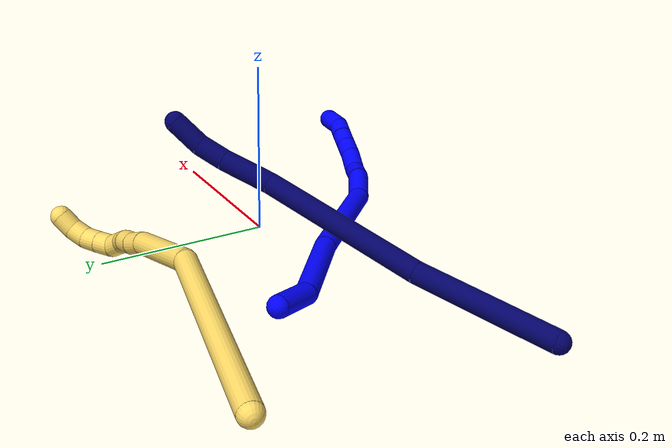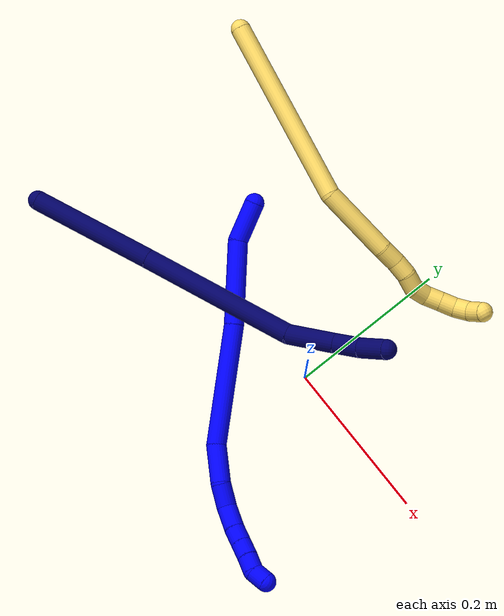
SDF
<sdf version="1.7">
 <world name="default">
  <model name="photoneo_s_sensor">
   <static>1</static>
   <pose>0 0 2 1.57079 1.57079 3.14159</pose>
   <link name="link">
    <inertial><mass>0.1</mass></inertial>
    <sensor name="sensor" type="depth">
     <update_rate>30</update_rate>
     <camera>
      <horizontal_fov>1.22</horizontal_fov>
      <image><width>1920</width><height>1200</height><format>B8G8R8</format></image>
      <clip><near>0.1</near><far>4</far></clip>
      <depth_camera><output>points</output></depth_camera>
     </camera>
     <plugin name="camera_plugin" filename="libgazebo_ros_depth_camera.so">
      <baseline>0.2</baseline>
      <alwaysOn>1</alwaysOn>
      <updateRate>0.0</updateRate>
      <cameraName>camera_ir</cameraName>
      <imageTopicName>/camera/color/image_raw</imageTopicName>
      <cameraInfoTopicName>/camera/color/camera_info</cameraInfoTopicName>
      <depthImageTopicName>/camera/depth/image_raw</depthImageTopicName>
      <depthImageCameraInfoTopicName>/camera/depth/camera_info</depthImageCameraInfoTopicName>
      <pointCloudTopicName>/camera/depth/points</pointCloudTopicName>
      <frameName>fr_optical</frameName>
      <pointCloudCutoff>0.1</pointCloudCutoff>
      <pointCloudCutoffMax>2.0</pointCloudCutoffMax>
      <distortionK1>0</distortionK1>
      <distortionK2>0</distortionK2>
      <distortionK3>0</distortionK3>
      <distortionT1>0</distortionT1>
      <distortionT2>0</distortionT2>
      <CxPrime>0</CxPrime>
      <Cx>0</Cx>
      <Cy>0</Cy>
      <focalLength>0</focalLength>
      <hackBaseline>0</hackBaseline>
     </plugin>
    </sensor>
   </link>
  </model>
  <model name="bin">
   <static>1</static>
   <link name="bottom">
    <collision name="collision-bottom">
     <pose>0 0 -0.01 0 -0 0</pose>
     <geometry><box><size>0.8 0.6 0.02</size></box></geometry>
     <surface>
      <friction><ode><mu>100</mu><mu2>100</mu2></ode></friction>
      <contact><collide_bitmask>65535</collide_bitmask></contact>
     </surface>
    </collision>
   </link>
   <link name="west_wall">
    <collision name="collision-west_wall">
     <pose>-0.41 0 0.1 0 -0 0</pose>
     <geometry><box><size>0.02 0.6 0.2</size></box></geometry>
     <surface>
      <friction><ode><mu>100</mu><mu2>100</mu2></ode></friction>
      <contact><collide_bitmask>65535</collide_bitmask></contact>
     </surface>
    </collision>
   </link>
   <link name="east_wall">
    <collision name="collision-east_wall">
     <pose>0.41 0 0.1 0 -0 0</pose>
     <geometry><box><size>0.02 0.6 0.2</size></box></geometry>
     <surface>
      <friction><ode><mu>100</mu><mu2>100</mu2></ode></friction>
      <contact><collide_bitmask>65535</collide_bitmask></contact>
     </surface>
    </collision>
   </link>
   <link name="south_wall">
    <collision name="collision-south_wall">
     <pose>0 -0.31 0.1 0 -0 0</pose>
     <geometry><box><size>0.8 0.02 0.2</size></box></geometry>
     <surface>
      <friction><ode><mu>100</mu><mu2>100</mu2></ode></friction>
      <contact><collide_bitmask>65535</collide_bitmask></contact>
     </surface>
    </collision>
   </link>
   <link name="north_wall">
    <collision name="collision-north_wall">
     <pose>0 0.31 0.1 0 -0 0</pose>
     <geometry><box><size>0.8 0.02 0.2</size></box></geometry>
     <surface>
      <friction><ode><mu>100</mu><mu2>100</mu2></ode></friction>
      <contact><collide_bitmask>65535</collide_bitmask></contact>
     </surface>
    </collision>
   </link>
  </model>
  <model name="1">
   <static>0</static>
   <link name="1">
    <collision name="collision-cylinder-e_1_1_4">
     <pose>0.01701 -0.019149 -0.003366 1.7448 0.718748 0.841528</pose>
     <geometry><cylinder><radius>0.0125</radius><length>0.051667</length></cylinder></geometry>
     <surface>
      <friction><ode><mu>1.16</mu><mu2>1.16</mu2><slip1>0</slip1><slip2>0</slip2></ode></friction>
      <contact><ode><kp>1e+06</kp><kd>1</kd><max_vel>0</max_vel><min_depth>0.001</min_depth></ode></contact>
     </surface>
    </collision>
    <visual name="visual-cylinder-e_1_1_4">
     <pose>0.01701 -0.019149 -0.003366 1.7448 0.718748 0.841528</pose>
     <geometry><cylinder><radius>0.0125</radius><length>0.051667</length></cylinder></geometry>
     <material><ambient>0 0 1 1</ambient></material>
    </visual>
    <collision name="collision-cylinder-e_2_4_5">
     <pose>0.081727 -0.059724 -0.01683 2.01121 1.10998 1.54813</pose>
     <geometry><cylinder><radius>0.0125</radius><length>0.106526</length></cylinder></geometry>
     <surface>
      <friction><ode><mu>1.16</mu><mu2>1.16</mu2><slip1>0</slip1><slip2>0</slip2></ode></friction>
      <contact><ode><kp>1e+06</kp><kd>1</kd><max_vel>0</max_vel><min_depth>0.001</min_depth></ode></contact>
     </surface>
    </collision>
    <visual name="visual-cylinder-e_2_4_5">
     <pose>0.081727 -0.059724 -0.01683 2.01121 1.10998 1.54813</pose>
     <geometry><cylinder><radius>0.0125</radius><length>0.106526</length></cylinder></geometry>
     <material><ambient>0 0 1 1</ambient></material>
    </visual>
    <collision name="collision-cylinder-e_3_5_6">
     <pose>0.193707 -0.118707 -0.039444 1.8925 1.01873 1.31846</pose>
     <geometry><cylinder><radius>0.0125</radius><length>0.150975</length></cylinder></geometry>
     <surface>
      <friction><ode><mu>1.16</mu><mu2>1.16</mu2><slip1>0</slip1><slip2>0</slip2></ode></friction>
      <contact><ode><kp>1e+06</kp><kd>1</kd><max_vel>0</max_vel><min_depth>0.001</min_depth></ode></contact>
     </surface>
    </collision>
    <visual name="visual-cylinder-e_3_5_6">
     <pose>0.193707 -0.118707 -0.039444 1.8925 1.01873 1.31846</pose>
     <geometry><cylinder><radius>0.0125</radius><length>0.150975</length></cylinder></geometry>
     <material><ambient>0 0 1 1</ambient></material>
    </visual>
    <collision name="collision-cylinder-e_4_6_7">
     <pose>0.281345 -0.16134 -0.056178 2.26407 1.29556 2.03139</pose>
     <geometry><cylinder><radius>0.0125</radius><length>0.048556</length></cylinder></geometry>
     <surface>
      <friction><ode><mu>1.16</mu><mu2>1.16</mu2><slip1>0</slip1><slip2>0</slip2></ode></friction>
      <contact><ode><kp>1e+06</kp><kd>1</kd><max_vel>0</max_vel><min_depth>0.001</min_depth></ode></contact>
     </surface>
    </collision>
    <visual name="visual-cylinder-e_4_6_7">
     <pose>0.281345 -0.16134 -0.056178 2.26407 1.29556 2.03139</pose>
     <geometry><cylinder><radius>0.0125</radius><length>0.048556</length></cylinder></geometry>
     <material><ambient>0 0 1 1</ambient></material>
    </visual>
    <collision name="collision-cylinder-e_5_7_8">
     <pose>0.317841 -0.169555 -0.067158 2.70688 1.0544 2.41642</pose>
     <geometry><cylinder><radius>0.0125</radius><length>0.030202</length></cylinder></geometry>
     <surface>
      <friction><ode><mu>1.16</mu><mu2>1.16</mu2><slip1>0</slip1><slip2>0</slip2></ode></friction>
      <contact><ode><kp>1e+06</kp><kd>1</kd><max_vel>0</max_vel><min_depth>0.001</min_depth></ode></contact>
     </surface>
    </collision>
    <visual name="visual-cylinder-e_5_7_8">
     <pose>0.317841 -0.169555 -0.067158 2.70688 1.0544 2.41642</pose>
     <geometry><cylinder><radius>0.0125</radius><length>0.030202</length></cylinder></geometry>
     <material><ambient>0 0 1 1</ambient></material>
    </visual>
    <collision name="collision-cylinder-e_6_8_9">
     <pose>0.346425 -0.171371 -0.075116 -2.30519 1.45584 -2.2164</pose>
     <geometry><cylinder><radius>0.0125</radius><length>0.03111</length></cylinder></geometry>
     <surface>
      <friction><ode><mu>1.16</mu><mu2>1.16</mu2><slip1>0</slip1><slip2>0</slip2></ode></friction>
      <contact><ode><kp>1e+06</kp><kd>1</kd><max_vel>0</max_vel><min_depth>0.001</min_depth></ode></contact>
     </surface>
    </collision>
    <visual name="visual-cylinder-e_6_8_9">
     <pose>0.346425 -0.171371 -0.075116 -2.30519 1.45584 -2.2164</pose>
     <geometry><cylinder><radius>0.0125</radius><length>0.03111</length></cylinder></geometry>
     <material><ambient>0 0 1 1</ambient></material>
    </visual>
    <collision name="collision-cylinder-e_7_9_10">
     <pose>0.371973 -0.168266 -0.077401 -2.11961 1.36687 -1.9357</pose>
     <geometry><cylinder><radius>0.0125</radius><length>0.020618</length></cylinder></geometry>
     <surface>
      <friction><ode><mu>1.16</mu><mu2>1.16</mu2><slip1>0</slip1><slip2>0</slip2></ode></friction>
      <contact><ode><kp>1e+06</kp><kd>1</kd><max_vel>0</max_vel><min_depth>0.001</min_depth></ode></contact>
     </surface>
    </collision>
    <visual name="visual-cylinder-e_7_9_10">
     <pose>0.371973 -0.168266 -0.077401 -2.11961 1.36687 -1.9357</pose>
     <geometry><cylinder><radius>0.0125</radius><length>0.020618</length></cylinder></geometry>
     <material><ambient>0 0 1 1</ambient></material>
    </visual>
    <collision name="collision-cylinder-e_8_10_11">
     <pose>0.391878 -0.164801 -0.079536 -2.12679 1.37145 -1.94792</pose>
     <geometry><cylinder><radius>0.0125</radius><length>0.020016</length></cylinder></geometry>
     <surface>
      <friction><ode><mu>1.16</mu><mu2>1.16</mu2><slip1>0</slip1><slip2>0</slip2></ode></friction>
      <contact><ode><kp>1e+06</kp><kd>1</kd><max_vel>0</max_vel><min_depth>0.001</min_depth></ode></contact>
     </surface>
    </collision>
    <visual name="visual-cylinder-e_8_10_11">
     <pose>0.391878 -0.164801 -0.079536 -2.12679 1.37145 -1.94792</pose>
     <geometry><cylinder><radius>0.0125</radius><length>0.020016</length></cylinder></geometry>
     <material><ambient>0 0 1 1</ambient></material>
    </visual>
    <collision name="collision-cylinder-e_9_11_12">
     <pose>0.411681 -0.162085 -0.081971 -2.50228 1.39927 -2.3922</pose>
     <geometry><cylinder><radius>0.0125</radius><length>0.020282</length></cylinder></geometry>
     <surface>
      <friction><ode><mu>1.16</mu><mu2>1.16</mu2><slip1>0</slip1><slip2>0</slip2></ode></friction>
      <contact><ode><kp>1e+06</kp><kd>1</kd><max_vel>0</max_vel><min_depth>0.001</min_depth></ode></contact>
     </surface>
    </collision>
    <visual name="visual-cylinder-e_9_11_12">
     <pose>0.411681 -0.162085 -0.081971 -2.50228 1.39927 -2.3922</pose>
     <geometry><cylinder><radius>0.0125</radius><length>0.020282</length></cylinder></geometry>
     <material><ambient>0 0 1 1</ambient></material>
    </visual>
    <collision name="collision-cylinder-e_10_12_2">
     <pose>0.429653 -0.15624 -0.087052 -2.22527 0.920915 -1.57658</pose>
     <geometry><cylinder><radius>0.0125</radius><length>0.020047</length></cylinder></geometry>
     <surface>
      <friction><ode><mu>1.16</mu><mu2>1.16</mu2><slip1>0</slip1><slip2>0</slip2></ode></friction>
      <contact><ode><kp>1e+06</kp><kd>1</kd><max_vel>0</max_vel><min_depth>0.001</min_depth></ode></contact>
     </surface>
    </collision>
    <visual name="visual-cylinder-e_10_12_2">
     <pose>0.429653 -0.15624 -0.087052 -2.22527 0.920915 -1.57658</pose>
     <geometry><cylinder><radius>0.0125</radius><length>0.020047</length></cylinder></geometry>
     <material><ambient>0 0 1 1</ambient></material>
    </visual>
    <collision name="collision-sphere-2">
     <pose>0.437634 -0.151428 -0.090744 0 -0 0</pose>
     <geometry><sphere><radius>0.0125</radius></sphere></geometry>
     <surface>
      <friction><ode><mu>1.16</mu><mu2>1.16</mu2><slip1>0</slip1><slip2>0</slip2></ode></friction>
      <contact><ode><kp>1e+06</kp><kd>1</kd><max_vel>0</max_vel><min_depth>0.001</min_depth></ode></contact>
     </surface>
    </collision>
    <visual name="visual-sphere-2">
     <pose>0.437634 -0.151428 -0.090744 0 -0 0</pose>
     <geometry><sphere><radius>0.0125</radius></sphere></geometry>
     <material><ambient>0 0 1 1</ambient></material>
    </visual>
    <collision name="collision-sphere-12">
     <pose>0.421673 -0.161052 -0.08336 0 -0 0</pose>
     <geometry><sphere><radius>0.0125</radius></sphere></geometry>
     <surface>
      <friction><ode><mu>1.16</mu><mu2>1.16</mu2><slip1>0</slip1><slip2>0</slip2></ode></friction>
      <contact><ode><kp>1e+06</kp><kd>1</kd><max_vel>0</max_vel><min_depth>0.001</min_depth></ode></contact>
     </surface>
    </collision>
    <visual name="visual-sphere-12">
     <pose>0.421673 -0.161052 -0.08336 0 -0 0</pose>
     <geometry><sphere><radius>0.0125</radius></sphere></geometry>
     <material><ambient>0 0 1 1</ambient></material>
    </visual>
    <collision name="collision-sphere-11">
     <pose>0.401688 -0.163118 -0.080582 0 -0 0</pose>
     <geometry><sphere><radius>0.0125</radius></sphere></geometry>
     <surface>
      <friction><ode><mu>1.16</mu><mu2>1.16</mu2><slip1>0</slip1><slip2>0</slip2></ode></friction>
      <contact><ode><kp>1e+06</kp><kd>1</kd><max_vel>0</max_vel><min_depth>0.001</min_depth></ode></contact>
     </surface>
    </collision>
    <visual name="visual-sphere-11">
     <pose>0.401688 -0.163118 -0.080582 0 -0 0</pose>
     <geometry><sphere><radius>0.0125</radius></sphere></geometry>
     <material><ambient>0 0 1 1</ambient></material>
    </visual>
    <collision name="collision-sphere-10">
     <pose>0.382069 -0.166484 -0.07849 0 -0 0</pose>
     <geometry><sphere><radius>0.0125</radius></sphere></geometry>
     <surface>
      <friction><ode><mu>1.16</mu><mu2>1.16</mu2><slip1>0</slip1><slip2>0</slip2></ode></friction>
      <contact><ode><kp>1e+06</kp><kd>1</kd><max_vel>0</max_vel><min_depth>0.001</min_depth></ode></contact>
     </surface>
    </collision>
    <visual name="visual-sphere-10">
     <pose>0.382069 -0.166484 -0.07849 0 -0 0</pose>
     <geometry><sphere><radius>0.0125</radius></sphere></geometry>
     <material><ambient>0 0 1 1</ambient></material>
    </visual>
    <collision name="collision-sphere-9">
     <pose>0.361877 -0.170047 -0.076312 0 -0 0</pose>
     <geometry><sphere><radius>0.0125</radius></sphere></geometry>
     <surface>
      <friction><ode><mu>1.16</mu><mu2>1.16</mu2><slip1>0</slip1><slip2>0</slip2></ode></friction>
      <contact><ode><kp>1e+06</kp><kd>1</kd><max_vel>0</max_vel><min_depth>0.001</min_depth></ode></contact>
     </surface>
    </collision>
    <visual name="visual-sphere-9">
     <pose>0.361877 -0.170047 -0.076312 0 -0 0</pose>
     <geometry><sphere><radius>0.0125</radius></sphere></geometry>
     <material><ambient>0 0 1 1</ambient></material>
    </visual>
    <collision name="collision-sphere-4">
     <pose>0.03402 -0.038299 -0.006732 0 -0 0</pose>
     <geometry><sphere><radius>0.0125</radius></sphere></geometry>
     <surface>
      <friction><ode><mu>1.16</mu><mu2>1.16</mu2><slip1>0</slip1><slip2>0</slip2></ode></friction>
      <contact><ode><kp>1e+06</kp><kd>1</kd><max_vel>0</max_vel><min_depth>0.001</min_depth></ode></contact>
     </surface>
    </collision>
    <visual name="visual-sphere-4">
     <pose>0.03402 -0.038299 -0.006732 0 -0 0</pose>
     <geometry><sphere><radius>0.0125</radius></sphere></geometry>
     <material><ambient>0 0 1 1</ambient></material>
    </visual>
    <collision name="collision-sphere-1">
     <geometry><sphere><radius>0.0125</radius></sphere></geometry>
     <surface>
      <friction><ode><mu>1.16</mu><mu2>1.16</mu2><slip1>0</slip1><slip2>0</slip2></ode></friction>
      <contact><ode><kp>1e+06</kp><kd>1</kd><max_vel>0</max_vel><min_depth>0.001</min_depth></ode></contact>
     </surface>
    </collision>
    <visual name="visual-sphere-1">
     <geometry><sphere><radius>0.0125</radius></sphere></geometry>
     <material><ambient>0 0 1 1</ambient></material>
    </visual>
    <collision name="collision-sphere-8">
     <pose>0.330973 -0.172695 -0.07392 0 -0 0</pose>
     <geometry><sphere><radius>0.0125</radius></sphere></geometry>
     <surface>
      <friction><ode><mu>1.16</mu><mu2>1.16</mu2><slip1>0</slip1><slip2>0</slip2></ode></friction>
      <contact><ode><kp>1e+06</kp><kd>1</kd><max_vel>0</max_vel><min_depth>0.001</min_depth></ode></contact>
     </surface>
    </collision>
    <visual name="visual-sphere-8">
     <pose>0.330973 -0.172695 -0.07392 0 -0 0</pose>
     <geometry><sphere><radius>0.0125</radius></sphere></geometry>
     <material><ambient>0 0 1 1</ambient></material>
    </visual>
    <collision name="collision-sphere-5">
     <pose>0.129434 -0.081148 -0.026927 0 -0 0</pose>
     <geometry><sphere><radius>0.0125</radius></sphere></geometry>
     <surface>
      <friction><ode><mu>1.16</mu><mu2>1.16</mu2><slip1>0</slip1><slip2>0</slip2></ode></friction>
      <contact><ode><kp>1e+06</kp><kd>1</kd><max_vel>0</max_vel><min_depth>0.001</min_depth></ode></contact>
     </surface>
    </collision>
    <visual name="visual-sphere-5">
     <pose>0.129434 -0.081148 -0.026927 0 -0 0</pose>
     <geometry><sphere><radius>0.0125</radius></sphere></geometry>
     <material><ambient>0 0 1 1</ambient></material>
    </visual>
    <collision name="collision-sphere-6">
     <pose>0.25798 -0.156265 -0.051962 0 -0 0</pose>
     <geometry><sphere><radius>0.0125</radius></sphere></geometry>
     <surface>
      <friction><ode><mu>1.16</mu><mu2>1.16</mu2><slip1>0</slip1><slip2>0</slip2></ode></friction>
      <contact><ode><kp>1e+06</kp><kd>1</kd><max_vel>0</max_vel><min_depth>0.001</min_depth></ode></contact>
     </surface>
    </collision>
    <visual name="visual-sphere-6">
     <pose>0.25798 -0.156265 -0.051962 0 -0 0</pose>
     <geometry><sphere><radius>0.0125</radius></sphere></geometry>
     <material><ambient>0 0 1 1</ambient></material>
    </visual>
    <collision name="collision-sphere-7">
     <pose>0.304709 -0.166415 -0.060395 0 -0 0</pose>
     <geometry><sphere><radius>0.0125</radius></sphere></geometry>
     <surface>
      <friction><ode><mu>1.16</mu><mu2>1.16</mu2><slip1>0</slip1><slip2>0</slip2></ode></friction>
      <contact><ode><kp>1e+06</kp><kd>1</kd><max_vel>0</max_vel><min_depth>0.001</min_depth></ode></contact>
     </surface>
    </collision>
    <visual name="visual-sphere-7">
     <pose>0.304709 -0.166415 -0.060395 0 -0 0</pose>
     <geometry><sphere><radius>0.0125</radius></sphere></geometry>
     <material><ambient>0 0 1 1</ambient></material>
    </visual>
    <inertial>
     <pose>0.210688 -0.113494 -0.043221 0 -0 0</pose>
     <mass>0.5</mass>
     <inertia>
      <ixx>0.000282</ixx>
      <ixy>0</ixy>
      <ixz>0</ixz>
      <iyy>0.000511</iyy>
      <iyz>0</iyz>
      <izz>-0.000183</izz>
     </inertia>
    </inertial>
   </link>
   <pose>-0.20931 0.086832 0.020772 0.502986 -0.406361 -0.455154</pose>
  </model>
  <model name="5">
   <static>0</static>
   <link name="5">
    <collision name="collision-cylinder-e_1_1_4">
     <pose>-0.003421 -0.005019 -0.120276 3.09989 -0.028407 -1.1959</pose>
     <geometry><cylinder><radius>0.0125</radius><length>0.240859</length></cylinder></geometry>
     <surface>
      <friction><ode><mu>1.16</mu><mu2>1.16</mu2><slip1>0</slip1><slip2>0</slip2></ode></friction>
      <contact><ode><kp>1e+06</kp><kd>1</kd><max_vel>0</max_vel><min_depth>0.001</min_depth></ode></contact>
     </surface>
    </collision>
    <visual name="visual-cylinder-e_1_1_4">
     <pose>-0.003421 -0.005019 -0.120276 3.09989 -0.028407 -1.1959</pose>
     <geometry><cylinder><radius>0.0125</radius><length>0.240859</length></cylinder></geometry>
     <material><ambient>1 0.858824 0.4 1</ambient></material>
    </visual>
    <collision name="collision-cylinder-e_2_4_5">
     <pose>0.007399 -0.002014 -0.284381 -2.96053 0.309334 -2.08708</pose>
     <geometry><cylinder><radius>0.0125</radius><length>0.093554</length></cylinder></geometry>
     <surface>
      <friction><ode><mu>1.16</mu><mu2>1.16</mu2><slip1>0</slip1><slip2>0</slip2></ode></friction>
      <contact><ode><kp>1e+06</kp><kd>1</kd><max_vel>0</max_vel><min_depth>0.001</min_depth></ode></contact>
     </surface>
    </collision>
    <visual name="visual-cylinder-e_2_4_5">
     <pose>0.007399 -0.002014 -0.284381 -2.96053 0.309334 -2.08708</pose>
     <geometry><cylinder><radius>0.0125</radius><length>0.093554</length></cylinder></geometry>
     <material><ambient>1 0.858824 0.4 1</ambient></material>
    </visual>
    <collision name="collision-cylinder-e_3_5_6">
     <pose>0.026116 0.01004 -0.338466 -2.76721 0.38592 -1.60188</pose>
     <geometry><cylinder><radius>0.0125</radius><length>0.02379</length></cylinder></geometry>
     <surface>
      <friction><ode><mu>1.16</mu><mu2>1.16</mu2><slip1>0</slip1><slip2>0</slip2></ode></friction>
      <contact><ode><kp>1e+06</kp><kd>1</kd><max_vel>0</max_vel><min_depth>0.001</min_depth></ode></contact>
     </surface>
    </collision>
    <visual name="visual-cylinder-e_3_5_6">
     <pose>0.026116 0.01004 -0.338466 -2.76721 0.38592 -1.60188</pose>
     <geometry><cylinder><radius>0.0125</radius><length>0.02379</length></cylinder></geometry>
     <material><ambient>1 0.858824 0.4 1</ambient></material>
    </visual>
    <collision name="collision-cylinder-e_4_6_7">
     <pose>0.033279 0.016634 -0.358548 -2.88631 0.258491 -1.58342</pose>
     <geometry><cylinder><radius>0.0125</radius><length>0.021006</length></cylinder></geometry>
     <surface>
      <friction><ode><mu>1.16</mu><mu2>1.16</mu2><slip1>0</slip1><slip2>0</slip2></ode></friction>
      <contact><ode><kp>1e+06</kp><kd>1</kd><max_vel>0</max_vel><min_depth>0.001</min_depth></ode></contact>
     </surface>
    </collision>
    <visual name="visual-cylinder-e_4_6_7">
     <pose>0.033279 0.016634 -0.358548 -2.88631 0.258491 -1.58342</pose>
     <geometry><cylinder><radius>0.0125</radius><length>0.021006</length></cylinder></geometry>
     <material><ambient>1 0.858824 0.4 1</ambient></material>
    </visual>
    <collision name="collision-cylinder-e_5_7_8">
     <pose>0.037202 0.024045 -0.377449 -2.65111 0.119761 -0.470218</pose>
     <geometry><cylinder><radius>0.0125</radius><length>0.020727</length></cylinder></geometry>
     <surface>
      <friction><ode><mu>1.16</mu><mu2>1.16</mu2><slip1>0</slip1><slip2>0</slip2></ode></friction>
      <contact><ode><kp>1e+06</kp><kd>1</kd><max_vel>0</max_vel><min_depth>0.001</min_depth></ode></contact>
     </surface>
    </collision>
    <visual name="visual-cylinder-e_5_7_8">
     <pose>0.037202 0.024045 -0.377449 -2.65111 0.119761 -0.470218</pose>
     <geometry><cylinder><radius>0.0125</radius><length>0.020727</length></cylinder></geometry>
     <material><ambient>1 0.858824 0.4 1</ambient></material>
    </visual>
    <collision name="collision-cylinder-e_6_8_9">
     <pose>0.044065 0.033356 -0.393484 -2.57117 0.597368 -1.61967</pose>
     <geometry><cylinder><radius>0.0125</radius><length>0.02</length></cylinder></geometry>
     <surface>
      <friction><ode><mu>1.16</mu><mu2>1.16</mu2><slip1>0</slip1><slip2>0</slip2></ode></friction>
      <contact><ode><kp>1e+06</kp><kd>1</kd><max_vel>0</max_vel><min_depth>0.001</min_depth></ode></contact>
     </surface>
    </collision>
    <visual name="visual-cylinder-e_6_8_9">
     <pose>0.044065 0.033356 -0.393484 -2.57117 0.597368 -1.61967</pose>
     <geometry><cylinder><radius>0.0125</radius><length>0.02</length></cylinder></geometry>
     <material><ambient>1 0.858824 0.4 1</ambient></material>
    </visual>
    <collision name="collision-cylinder-e_7_9_10">
     <pose>0.056048 0.037234 -0.408173 3.06573 0.687018 2.93019</pose>
     <geometry><cylinder><radius>0.0125</radius><length>0.020052</length></cylinder></geometry>
     <surface>
      <friction><ode><mu>1.16</mu><mu2>1.16</mu2><slip1>0</slip1><slip2>0</slip2></ode></friction>
      <contact><ode><kp>1e+06</kp><kd>1</kd><max_vel>0</max_vel><min_depth>0.001</min_depth></ode></contact>
     </surface>
    </collision>
    <visual name="visual-cylinder-e_7_9_10">
     <pose>0.056048 0.037234 -0.408173 3.06573 0.687018 2.93019</pose>
     <geometry><cylinder><radius>0.0125</radius><length>0.020052</length></cylinder></geometry>
     <material><ambient>1 0.858824 0.4 1</ambient></material>
    </visual>
    <collision name="collision-cylinder-e_8_10_11">
     <pose>0.068555 0.035828 -0.423747 3.03769 0.662088 2.84127</pose>
     <geometry><cylinder><radius>0.0125</radius><length>0.020001</length></cylinder></geometry>
     <surface>
      <friction><ode><mu>1.16</mu><mu2>1.16</mu2><slip1>0</slip1><slip2>0</slip2></ode></friction>
      <contact><ode><kp>1e+06</kp><kd>1</kd><max_vel>0</max_vel><min_depth>0.001</min_depth></ode></contact>
     </surface>
    </collision>
    <visual name="visual-cylinder-e_8_10_11">
     <pose>0.068555 0.035828 -0.423747 3.03769 0.662088 2.84127</pose>
     <geometry><cylinder><radius>0.0125</radius><length>0.020001</length></cylinder></geometry>
     <material><ambient>1 0.858824 0.4 1</ambient></material>
    </visual>
    <collision name="collision-cylinder-e_9_11_12">
     <pose>0.080455 0.030503 -0.438422 2.55824 0.612668 1.62285</pose>
     <geometry><cylinder><radius>0.0125</radius><length>0.020004</length></cylinder></geometry>
     <surface>
      <friction><ode><mu>1.16</mu><mu2>1.16</mu2><slip1>0</slip1><slip2>0</slip2></ode></friction>
      <contact><ode><kp>1e+06</kp><kd>1</kd><max_vel>0</max_vel><min_depth>0.001</min_depth></ode></contact>
     </surface>
    </collision>
    <visual name="visual-cylinder-e_9_11_12">
     <pose>0.080455 0.030503 -0.438422 2.55824 0.612668 1.62285</pose>
     <geometry><cylinder><radius>0.0125</radius><length>0.020004</length></cylinder></geometry>
     <material><ambient>1 0.858824 0.4 1</ambient></material>
    </visual>
    <collision name="collision-cylinder-e_10_12_2">
     <pose>0.090897 0.018603 -0.45009 2.15034 0.488069 0.863208</pose>
     <geometry><cylinder><radius>0.0125</radius><length>0.020006</length></cylinder></geometry>
     <surface>
      <friction><ode><mu>1.16</mu><mu2>1.16</mu2><slip1>0</slip1><slip2>0</slip2></ode></friction>
      <contact><ode><kp>1e+06</kp><kd>1</kd><max_vel>0</max_vel><min_depth>0.001</min_depth></ode></contact>
     </surface>
    </collision>
    <visual name="visual-cylinder-e_10_12_2">
     <pose>0.090897 0.018603 -0.45009 2.15034 0.488069 0.863208</pose>
     <geometry><cylinder><radius>0.0125</radius><length>0.020006</length></cylinder></geometry>
     <material><ambient>1 0.858824 0.4 1</ambient></material>
    </visual>
    <collision name="collision-sphere-2">
     <pose>0.095588 0.01121 -0.454929 0 -0 0</pose>
     <geometry><sphere><radius>0.0125</radius></sphere></geometry>
     <surface>
      <friction><ode><mu>1.16</mu><mu2>1.16</mu2><slip1>0</slip1><slip2>0</slip2></ode></friction>
      <contact><ode><kp>1e+06</kp><kd>1</kd><max_vel>0</max_vel><min_depth>0.001</min_depth></ode></contact>
     </surface>
    </collision>
    <visual name="visual-sphere-2">
     <pose>0.095588 0.01121 -0.454929 0 -0 0</pose>
     <geometry><sphere><radius>0.0125</radius></sphere></geometry>
     <material><ambient>1 0.858824 0.4 1</ambient></material>
    </visual>
    <collision name="collision-sphere-12">
     <pose>0.086207 0.025995 -0.445251 0 -0 0</pose>
     <geometry><sphere><radius>0.0125</radius></sphere></geometry>
     <surface>
      <friction><ode><mu>1.16</mu><mu2>1.16</mu2><slip1>0</slip1><slip2>0</slip2></ode></friction>
      <contact><ode><kp>1e+06</kp><kd>1</kd><max_vel>0</max_vel><min_depth>0.001</min_depth></ode></contact>
     </surface>
    </collision>
    <visual name="visual-sphere-12">
     <pose>0.086207 0.025995 -0.445251 0 -0 0</pose>
     <geometry><sphere><radius>0.0125</radius></sphere></geometry>
     <material><ambient>1 0.858824 0.4 1</ambient></material>
    </visual>
    <collision name="collision-sphere-11">
     <pose>0.074703 0.03501 -0.431592 0 -0 0</pose>
     <geometry><sphere><radius>0.0125</radius></sphere></geometry>
     <surface>
      <friction><ode><mu>1.16</mu><mu2>1.16</mu2><slip1>0</slip1><slip2>0</slip2></ode></friction>
      <contact><ode><kp>1e+06</kp><kd>1</kd><max_vel>0</max_vel><min_depth>0.001</min_depth></ode></contact>
     </surface>
    </collision>
    <visual name="visual-sphere-11">
     <pose>0.074703 0.03501 -0.431592 0 -0 0</pose>
     <geometry><sphere><radius>0.0125</radius></sphere></geometry>
     <material><ambient>1 0.858824 0.4 1</ambient></material>
    </visual>
    <collision name="collision-sphere-10">
     <pose>0.062407 0.036646 -0.415902 0 -0 0</pose>
     <geometry><sphere><radius>0.0125</radius></sphere></geometry>
     <surface>
      <friction><ode><mu>1.16</mu><mu2>1.16</mu2><slip1>0</slip1><slip2>0</slip2></ode></friction>
      <contact><ode><kp>1e+06</kp><kd>1</kd><max_vel>0</max_vel><min_depth>0.001</min_depth></ode></contact>
     </surface>
    </collision>
    <visual name="visual-sphere-10">
     <pose>0.062407 0.036646 -0.415902 0 -0 0</pose>
     <geometry><sphere><radius>0.0125</radius></sphere></geometry>
     <material><ambient>1 0.858824 0.4 1</ambient></material>
    </visual>
    <collision name="collision-sphere-9">
     <pose>0.049689 0.037821 -0.400444 0 -0 0</pose>
     <geometry><sphere><radius>0.0125</radius></sphere></geometry>
     <surface>
      <friction><ode><mu>1.16</mu><mu2>1.16</mu2><slip1>0</slip1><slip2>0</slip2></ode></friction>
      <contact><ode><kp>1e+06</kp><kd>1</kd><max_vel>0</max_vel><min_depth>0.001</min_depth></ode></contact>
     </surface>
    </collision>
    <visual name="visual-sphere-9">
     <pose>0.049689 0.037821 -0.400444 0 -0 0</pose>
     <geometry><sphere><radius>0.0125</radius></sphere></geometry>
     <material><ambient>1 0.858824 0.4 1</ambient></material>
    </visual>
    <collision name="collision-sphere-4">
     <pose>-0.006841 -0.010037 -0.240552 0 -0 0</pose>
     <geometry><sphere><radius>0.0125</radius></sphere></geometry>
     <surface>
      <friction><ode><mu>1.16</mu><mu2>1.16</mu2><slip1>0</slip1><slip2>0</slip2></ode></friction>
      <contact><ode><kp>1e+06</kp><kd>1</kd><max_vel>0</max_vel><min_depth>0.001</min_depth></ode></contact>
     </surface>
    </collision>
    <visual name="visual-sphere-4">
     <pose>-0.006841 -0.010037 -0.240552 0 -0 0</pose>
     <geometry><sphere><radius>0.0125</radius></sphere></geometry>
     <material><ambient>1 0.858824 0.4 1</ambient></material>
    </visual>
    <collision name="collision-sphere-1">
     <geometry><sphere><radius>0.0125</radius></sphere></geometry>
     <surface>
      <friction><ode><mu>1.16</mu><mu2>1.16</mu2><slip1>0</slip1><slip2>0</slip2></ode></friction>
      <contact><ode><kp>1e+06</kp><kd>1</kd><max_vel>0</max_vel><min_depth>0.001</min_depth></ode></contact>
     </surface>
    </collision>
    <visual name="visual-sphere-1">
     <geometry><sphere><radius>0.0125</radius></sphere></geometry>
     <material><ambient>1 0.858824 0.4 1</ambient></material>
    </visual>
    <collision name="collision-sphere-8">
     <pose>0.03844 0.028892 -0.386525 0 -0 0</pose>
     <geometry><sphere><radius>0.0125</radius></sphere></geometry>
     <surface>
      <friction><ode><mu>1.16</mu><mu2>1.16</mu2><slip1>0</slip1><slip2>0</slip2></ode></friction>
      <contact><ode><kp>1e+06</kp><kd>1</kd><max_vel>0</max_vel><min_depth>0.001</min_depth></ode></contact>
     </surface>
    </collision>
    <visual name="visual-sphere-8">
     <pose>0.03844 0.028892 -0.386525 0 -0 0</pose>
     <geometry><sphere><radius>0.0125</radius></sphere></geometry>
     <material><ambient>1 0.858824 0.4 1</ambient></material>
    </visual>
    <collision name="collision-sphere-5">
     <pose>0.021639 0.00601 -0.328209 0 -0 0</pose>
     <geometry><sphere><radius>0.0125</radius></sphere></geometry>
     <surface>
      <friction><ode><mu>1.16</mu><mu2>1.16</mu2><slip1>0</slip1><slip2>0</slip2></ode></friction>
      <contact><ode><kp>1e+06</kp><kd>1</kd><max_vel>0</max_vel><min_depth>0.001</min_depth></ode></contact>
     </surface>
    </collision>
    <visual name="visual-sphere-5">
     <pose>0.021639 0.00601 -0.328209 0 -0 0</pose>
     <geometry><sphere><radius>0.0125</radius></sphere></geometry>
     <material><ambient>1 0.858824 0.4 1</ambient></material>
    </visual>
    <collision name="collision-sphere-6">
     <pose>0.030594 0.01407 -0.348723 0 -0 0</pose>
     <geometry><sphere><radius>0.0125</radius></sphere></geometry>
     <surface>
      <friction><ode><mu>1.16</mu><mu2>1.16</mu2><slip1>0</slip1><slip2>0</slip2></ode></friction>
      <contact><ode><kp>1e+06</kp><kd>1</kd><max_vel>0</max_vel><min_depth>0.001</min_depth></ode></contact>
     </surface>
    </collision>
    <visual name="visual-sphere-6">
     <pose>0.030594 0.01407 -0.348723 0 -0 0</pose>
     <geometry><sphere><radius>0.0125</radius></sphere></geometry>
     <material><ambient>1 0.858824 0.4 1</ambient></material>
    </visual>
    <collision name="collision-sphere-7">
     <pose>0.035963 0.019198 -0.368373 0 -0 0</pose>
     <geometry><sphere><radius>0.0125</radius></sphere></geometry>
     <surface>
      <friction><ode><mu>1.16</mu><mu2>1.16</mu2><slip1>0</slip1><slip2>0</slip2></ode></friction>
      <contact><ode><kp>1e+06</kp><kd>1</kd><max_vel>0</max_vel><min_depth>0.001</min_depth></ode></contact>
     </surface>
    </collision>
    <visual name="visual-sphere-7">
     <pose>0.035963 0.019198 -0.368373 0 -0 0</pose>
     <geometry><sphere><radius>0.0125</radius></sphere></geometry>
     <material><ambient>1 0.858824 0.4 1</ambient></material>
    </visual>
    <inertial>
     <pose>0.017528 0.005604 -0.242573 0 -0 0</pose>
     <mass>0.5</mass>
     <inertia><ixx>-0.000751</ixx><ixy>0</ixy><ixz>0</ixz><iyy>-0.00154</iyy><iyz>0</iyz><izz>6e-06</izz></inertia>
    </inertial>
   </link>
   <pose>-0.388501 0.208312 0.049701 -1.58911 0.149907 1.39279</pose>
  </model>
  <model name="7">
   <static>0</static>
   <link name="7">
    <collision name="collision-cylinder-e_1_1_4">
     <pose>0.018228 -0.026296 -0.074086 2.80052 0.227846 1.1729</pose>
     <geometry><cylinder><radius>0.0125</radius><length>0.161399</length></cylinder></geometry>
     <surface>
      <friction><ode><mu>1.16</mu><mu2>1.16</mu2><slip1>0</slip1><slip2>0</slip2></ode></friction>
      <contact><ode><kp>1e+06</kp><kd>1</kd><max_vel>0</max_vel><min_depth>0.001</min_depth></ode></contact>
     </surface>
    </collision>
    <visual name="visual-cylinder-e_1_1_4">
     <pose>0.018228 -0.026296 -0.074086 2.80052 0.227846 1.1729</pose>
     <geometry><cylinder><radius>0.0125</radius><length>0.161399</length></cylinder></geometry>
     <material><ambient>0.003922 0 0.403922 1</ambient></material>
    </visual>
    <collision name="collision-cylinder-e_2_4_5">
     <pose>0.067688 -0.080461 -0.241512 2.85144 0.310249 1.63873</pose>
     <geometry><cylinder><radius>0.0125</radius><length>0.204594</length></cylinder></geometry>
     <surface>
      <friction><ode><mu>1.16</mu><mu2>1.16</mu2><slip1>0</slip1><slip2>0</slip2></ode></friction>
      <contact><ode><kp>1e+06</kp><kd>1</kd><max_vel>0</max_vel><min_depth>0.001</min_depth></ode></contact>
     </surface>
    </collision>
    <visual name="visual-cylinder-e_2_4_5">
     <pose>0.067688 -0.080461 -0.241512 2.85144 0.310249 1.63873</pose>
     <geometry><cylinder><radius>0.0125</radius><length>0.204594</length></cylinder></geometry>
     <material><ambient>0.003922 0 0.403922 1</ambient></material>
    </visual>
    <collision name="collision-cylinder-e_3_5_6">
     <pose>0.10485 -0.108619 -0.364891 3.13202 0.194953 3.04381</pose>
     <geometry><cylinder><radius>0.0125</radius><length>0.061238</length></cylinder></geometry>
     <surface>
      <friction><ode><mu>1.16</mu><mu2>1.16</mu2><slip1>0</slip1><slip2>0</slip2></ode></friction>
      <contact><ode><kp>1e+06</kp><kd>1</kd><max_vel>0</max_vel><min_depth>0.001</min_depth></ode></contact>
     </surface>
    </collision>
    <visual name="visual-cylinder-e_3_5_6">
     <pose>0.10485 -0.108619 -0.364891 3.13202 0.194953 3.04381</pose>
     <geometry><cylinder><radius>0.0125</radius><length>0.061238</length></cylinder></geometry>
     <material><ambient>0.003922 0 0.403922 1</ambient></material>
    </visual>
    <collision name="collision-cylinder-e_4_6_7">
     <pose>0.115234 -0.107942 -0.411213 -3.08248 0.266468 -2.7074</pose>
     <geometry><cylinder><radius>0.0125</radius><length>0.033819</length></cylinder></geometry>
     <surface>
      <friction><ode><mu>1.16</mu><mu2>1.16</mu2><slip1>0</slip1><slip2>0</slip2></ode></friction>
      <contact><ode><kp>1e+06</kp><kd>1</kd><max_vel>0</max_vel><min_depth>0.001</min_depth></ode></contact>
     </surface>
    </collision>
    <visual name="visual-cylinder-e_4_6_7">
     <pose>0.115234 -0.107942 -0.411213 -3.08248 0.266468 -2.7074</pose>
     <geometry><cylinder><radius>0.0125</radius><length>0.033819</length></cylinder></geometry>
     <material><ambient>0.003922 0 0.403922 1</ambient></material>
    </visual>
    <collision name="collision-cylinder-e_5_7_2">
     <pose>0.127575 -0.101699 -0.444502 -2.84054 0.417041 -1.89776</pose>
     <geometry><cylinder><radius>0.0125</radius><length>0.03895</length></cylinder></geometry>
     <surface>
      <friction><ode><mu>1.16</mu><mu2>1.16</mu2><slip1>0</slip1><slip2>0</slip2></ode></friction>
      <contact><ode><kp>1e+06</kp><kd>1</kd><max_vel>0</max_vel><min_depth>0.001</min_depth></ode></contact>
     </surface>
    </collision>
    <visual name="visual-cylinder-e_5_7_2">
     <pose>0.127575 -0.101699 -0.444502 -2.84054 0.417041 -1.89776</pose>
     <geometry><cylinder><radius>0.0125</radius><length>0.03895</length></cylinder></geometry>
     <material><ambient>0.003922 0 0.403922 1</ambient></material>
    </visual>
    <collision name="collision-sphere-2">
     <pose>0.135464 -0.096419 -0.461507 0 -0 0</pose>
     <geometry><sphere><radius>0.0125</radius></sphere></geometry>
     <surface>
      <friction><ode><mu>1.16</mu><mu2>1.16</mu2><slip1>0</slip1><slip2>0</slip2></ode></friction>
      <contact><ode><kp>1e+06</kp><kd>1</kd><max_vel>0</max_vel><min_depth>0.001</min_depth></ode></contact>
     </surface>
    </collision>
    <visual name="visual-sphere-2">
     <pose>0.135464 -0.096419 -0.461507 0 -0 0</pose>
     <geometry><sphere><radius>0.0125</radius></sphere></geometry>
     <material><ambient>0.003922 0 0.403922 1</ambient></material>
    </visual>
    <collision name="collision-sphere-7">
     <pose>0.119687 -0.106979 -0.427497 0 -0 0</pose>
     <geometry><sphere><radius>0.0125</radius></sphere></geometry>
     <surface>
      <friction><ode><mu>1.16</mu><mu2>1.16</mu2><slip1>0</slip1><slip2>0</slip2></ode></friction>
      <contact><ode><kp>1e+06</kp><kd>1</kd><max_vel>0</max_vel><min_depth>0.001</min_depth></ode></contact>
     </surface>
    </collision>
    <visual name="visual-sphere-7">
     <pose>0.119687 -0.106979 -0.427497 0 -0 0</pose>
     <geometry><sphere><radius>0.0125</radius></sphere></geometry>
     <material><ambient>0.003922 0 0.403922 1</ambient></material>
    </visual>
    <collision name="collision-sphere-6">
     <pose>0.110781 -0.108906 -0.394928 0 -0 0</pose>
     <geometry><sphere><radius>0.0125</radius></sphere></geometry>
     <surface>
      <friction><ode><mu>1.16</mu><mu2>1.16</mu2><slip1>0</slip1><slip2>0</slip2></ode></friction>
      <contact><ode><kp>1e+06</kp><kd>1</kd><max_vel>0</max_vel><min_depth>0.001</min_depth></ode></contact>
     </surface>
    </collision>
    <visual name="visual-sphere-6">
     <pose>0.110781 -0.108906 -0.394928 0 -0 0</pose>
     <geometry><sphere><radius>0.0125</radius></sphere></geometry>
     <material><ambient>0.003922 0 0.403922 1</ambient></material>
    </visual>
    <collision name="collision-sphere-5">
     <pose>0.098918 -0.108331 -0.334853 0 -0 0</pose>
     <geometry><sphere><radius>0.0125</radius></sphere></geometry>
     <surface>
      <friction><ode><mu>1.16</mu><mu2>1.16</mu2><slip1>0</slip1><slip2>0</slip2></ode></friction>
      <contact><ode><kp>1e+06</kp><kd>1</kd><max_vel>0</max_vel><min_depth>0.001</min_depth></ode></contact>
     </surface>
    </collision>
    <visual name="visual-sphere-5">
     <pose>0.098918 -0.108331 -0.334853 0 -0 0</pose>
     <geometry><sphere><radius>0.0125</radius></sphere></geometry>
     <material><ambient>0.003922 0 0.403922 1</ambient></material>
    </visual>
    <collision name="collision-sphere-1">
     <geometry><sphere><radius>0.0125</radius></sphere></geometry>
     <surface>
      <friction><ode><mu>1.16</mu><mu2>1.16</mu2><slip1>0</slip1><slip2>0</slip2></ode></friction>
      <contact><ode><kp>1e+06</kp><kd>1</kd><max_vel>0</max_vel><min_depth>0.001</min_depth></ode></contact>
     </surface>
    </collision>
    <visual name="visual-sphere-1">
     <geometry><sphere><radius>0.0125</radius></sphere></geometry>
     <material><ambient>0.003922 0 0.403922 1</ambient></material>
    </visual>
    <collision name="collision-sphere-4">
     <pose>0.036457 -0.052592 -0.148171 0 -0 0</pose>
     <geometry><sphere><radius>0.0125</radius></sphere></geometry>
     <surface>
      <friction><ode><mu>1.16</mu><mu2>1.16</mu2><slip1>0</slip1><slip2>0</slip2></ode></friction>
      <contact><ode><kp>1e+06</kp><kd>1</kd><max_vel>0</max_vel><min_depth>0.001</min_depth></ode></contact>
     </surface>
    </collision>
    <visual name="visual-sphere-4">
     <pose>0.036457 -0.052592 -0.148171 0 -0 0</pose>
     <geometry><sphere><radius>0.0125</radius></sphere></geometry>
     <material><ambient>0.003922 0 0.403922 1</ambient></material>
    </visual>
    <inertial>
     <pose>0.064155 -0.069939 -0.229869 0 -0 0</pose>
     <mass>0.5</mass>
     <inertia>
      <ixx>0.001072</ixx>
      <ixy>0</ixy>
      <ixz>0</ixz>
      <iyy>0.001026</iyy>
      <iyz>0</iyz>
      <izz>-3.4e-05</izz>
     </inertia>
    </inertial>
   </link>
   <pose>-0.383113 -0.122122 0.012397 1.84647 -0.852536 -0.981766</pose>
  </model>
 </world>
</sdf>
